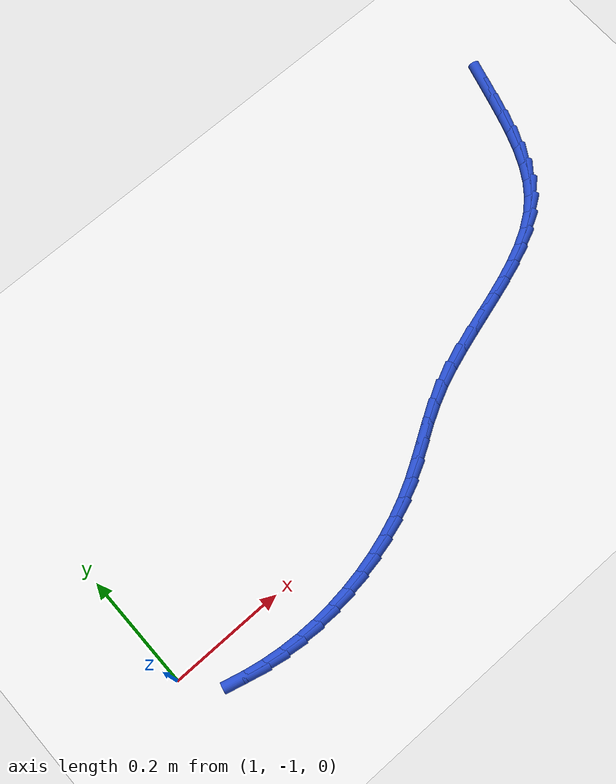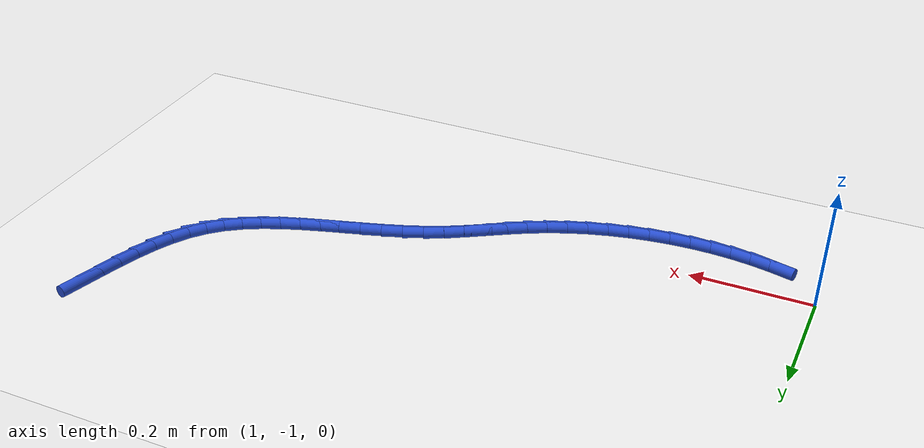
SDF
<sdf version="1.6">
 <world name="default">
  <model name="ground_plane">
   <static>1</static>
   <link name="link">
    <collision name="collision">
     <geometry><plane><normal>0 0 1</normal><size>100 100</size></plane></geometry>
     <surface><friction><ode><mu>100</mu><mu2>50</mu2></ode></friction></surface>
    </collision>
    <visual name="visual">
     <cast_shadows>0</cast_shadows>
     <geometry><plane><normal>0 0 1</normal><size>100 100</size></plane></geometry>
     <material>
      <script><uri>file://media/materials/scripts/gazebo.material</uri><name>Gazebo/WhiteGlow</name></script>
     </material>
    </visual>
   </link>
  </model>
  <model name="line">
   <link name="link_123">
    <pose>2.055883798735134 -0.5678172213441313 0.01 0 1.57 1.2972048636019677</pose>
    <collision name="collision">
     <geometry><cylinder><radius>0.01</radius><length>0.08</length></cylinder></geometry>
    </collision>
    <visual name="visual">
     <material>
      <script><name>Gazebo/Blue</name><uri>file://media/materials/scripts/gazebo.material</uri></script>
     </material>
     <geometry><cylinder><radius>0.01</radius><length>0.08</length></cylinder></geometry>
    </visual>
   </link>
   <link name="link_124">
    <pose>2.0462758349655066 -0.6020545209020888 0.01 0 1.57 1.2853734830545551</pose>
    <collision name="collision">
     <geometry><cylinder><radius>0.01</radius><length>0.08</length></cylinder></geometry>
    </collision>
    <visual name="visual">
     <material>
      <script><name>Gazebo/Blue</name><uri>file://media/materials/scripts/gazebo.material</uri></script>
     </material>
     <geometry><cylinder><radius>0.01</radius><length>0.08</length></cylinder></geometry>
    </visual>
   </link>
   <link name="link_125">
    <pose>2.036390455586121 -0.6357430249183852 0.01 0 1.57 1.254416554989902</pose>
    <collision name="collision">
     <geometry><cylinder><radius>0.01</radius><length>0.08</length></cylinder></geometry>
    </collision>
    <visual name="visual">
     <material>
      <script><name>Gazebo/Blue</name><uri>file://media/materials/scripts/gazebo.material</uri></script>
     </material>
     <geometry><cylinder><radius>0.01</radius><length>0.08</length></cylinder></geometry>
    </visual>
   </link>
   <link name="link_126">
    <pose>2.0256969860723544 -0.6684071673956302 0.01 0 1.57 1.2023373556497083</pose>
    <collision name="collision">
     <geometry><cylinder><radius>0.01</radius><length>0.08</length></cylinder></geometry>
    </collision>
    <visual name="visual">
     <material>
      <script><name>Gazebo/Blue</name><uri>file://media/materials/scripts/gazebo.material</uri></script>
     </material>
     <geometry><cylinder><radius>0.01</radius><length>0.08</length></cylinder></geometry>
    </visual>
   </link>
   <link name="link_127">
    <pose>2.0136647518995807 -0.699571382336436 0.01 0 1.57 1.126313383254475</pose>
    <collision name="collision">
     <geometry><cylinder><radius>0.01</radius><length>0.08</length></cylinder></geometry>
    </collision>
    <visual name="visual">
     <material>
      <script><name>Gazebo/Blue</name><uri>file://media/materials/scripts/gazebo.material</uri></script>
     </material>
     <geometry><cylinder><radius>0.01</radius><length>0.08</length></cylinder></geometry>
    </visual>
   </link>
   <link name="link_128">
    <pose>1.9997630785431766 -0.7287601037434134 0.01 0 1.57 1.0232794943333388</pose>
    <collision name="collision">
     <geometry><cylinder><radius>0.01</radius><length>0.08</length></cylinder></geometry>
    </collision>
    <visual name="visual">
     <material>
      <script><name>Gazebo/Blue</name><uri>file://media/materials/scripts/gazebo.material</uri></script>
     </material>
     <geometry><cylinder><radius>0.01</radius><length>0.08</length></cylinder></geometry>
    </visual>
   </link>
   <link name="link_129">
    <pose>1.9834612914785181 -0.755497765619174 0.01 0 1.57 0.8913676922408381</pose>
    <collision name="collision">
     <geometry><cylinder><radius>0.01</radius><length>0.08</length></cylinder></geometry>
    </collision>
    <visual name="visual">
     <material>
      <script><name>Gazebo/Blue</name><uri>file://media/materials/scripts/gazebo.material</uri></script>
     </material>
     <geometry><cylinder><radius>0.01</radius><length>0.08</length></cylinder></geometry>
    </visual>
   </link>
   <link name="link_130">
    <pose>1.9642287167121648 -0.7793088024828995 0.01 0 1.57 0.7402058791647951</pose>
    <collision name="collision">
     <geometry><cylinder><radius>0.01</radius><length>0.08</length></cylinder></geometry>
    </collision>
    <visual name="visual">
     <material>
      <script><name>Gazebo/Blue</name><uri>file://media/materials/scripts/gazebo.material</uri></script>
     </material>
     <geometry><cylinder><radius>0.01</radius><length>0.08</length></cylinder></geometry>
    </visual>
   </link>
   <link name="link_131">
    <pose>1.9417051030083394 -0.7998833832856939 0.01 0 1.57 0.6053521558457817</pose>
    <collision name="collision">
     <geometry><cylinder><radius>0.01</radius><length>0.08</length></cylinder></geometry>
    </collision>
    <visual name="visual">
     <material>
      <script><name>Gazebo/Blue</name><uri>file://media/materials/scripts/gazebo.material</uri></script>
     </material>
     <geometry><cylinder><radius>0.01</radius><length>0.08</length></cylinder></geometry>
    </visual>
   </link>
   <link name="link_132">
    <pose>1.916182246102033 -0.8175457861537957 0.01 0 1.57 0.4969506986200127</pose>
    <collision name="collision">
     <geometry><cylinder><radius>0.01</radius><length>0.08</length></cylinder></geometry>
    </collision>
    <visual name="visual">
     <material>
      <script><name>Gazebo/Blue</name><uri>file://media/materials/scripts/gazebo.material</uri></script>
     </material>
     <geometry><cylinder><radius>0.01</radius><length>0.08</length></cylinder></geometry>
    </visual>
   </link>
   <link name="link_133">
    <pose>1.888107862031428 -0.8327719201530457 0.01 0 1.57 0.41415614177470517</pose>
    <collision name="collision">
     <geometry><cylinder><radius>0.01</radius><length>0.08</length></cylinder></geometry>
    </collision>
    <visual name="visual">
     <material>
      <script><name>Gazebo/Blue</name><uri>file://media/materials/scripts/gazebo.material</uri></script>
     </material>
     <geometry><cylinder><radius>0.01</radius><length>0.08</length></cylinder></geometry>
    </visual>
   </link>
   <link name="link_134">
    <pose>1.8579296668347054 -0.846037694349286 0.01 0 1.57 0.3544527516067885</pose>
    <collision name="collision">
     <geometry><cylinder><radius>0.01</radius><length>0.08</length></cylinder></geometry>
    </collision>
    <visual name="visual">
     <material>
      <script><name>Gazebo/Blue</name><uri>file://media/materials/scripts/gazebo.material</uri></script>
     </material>
     <geometry><cylinder><radius>0.01</radius><length>0.08</length></cylinder></geometry>
    </visual>
   </link>
   <link name="link_135">
    <pose>1.8260953765500465 -0.8578190178083581 0.01 0 1.57 0.3151599422159717</pose>
    <collision name="collision">
     <geometry><cylinder><radius>0.01</radius><length>0.08</length></cylinder></geometry>
    </collision>
    <visual name="visual">
     <material>
      <script><name>Gazebo/Blue</name><uri>file://media/materials/scripts/gazebo.material</uri></script>
     </material>
     <geometry><cylinder><radius>0.01</radius><length>0.08</length></cylinder></geometry>
    </visual>
   </link>
   <link name="link_136">
    <pose>1.7930527072156326 -0.8685917995961033 0.01 0 1.57 0.2941455599177631</pose>
    <collision name="collision">
     <geometry><cylinder><radius>0.01</radius><length>0.08</length></cylinder></geometry>
    </collision>
    <visual name="visual">
     <material>
      <script><name>Gazebo/Blue</name><uri>file://media/materials/scripts/gazebo.material</uri></script>
     </material>
     <geometry><cylinder><radius>0.01</radius><length>0.08</length></cylinder></geometry>
    </visual>
   </link>
   <link name="link_137">
    <pose>1.7592493748696452 -0.8788319487783635 0.01 0 1.57 0.29007244390047227</pose>
    <collision name="collision">
     <geometry><cylinder><radius>0.01</radius><length>0.08</length></cylinder></geometry>
    </collision>
    <visual name="visual">
     <material>
      <script><name>Gazebo/Blue</name><uri>file://media/materials/scripts/gazebo.material</uri></script>
     </material>
     <geometry><cylinder><radius>0.01</radius><length>0.08</length></cylinder></geometry>
    </visual>
   </link>
   <link name="link_138">
    <pose>1.7251330955502657 -0.8890153744209806 0.01 0 1.57 0.30243947724921616</pose>
    <collision name="collision">
     <geometry><cylinder><radius>0.01</radius><length>0.08</length></cylinder></geometry>
    </collision>
    <visual name="visual">
     <material>
      <script><name>Gazebo/Blue</name><uri>file://media/materials/scripts/gazebo.material</uri></script>
     </material>
     <geometry><cylinder><radius>0.01</radius><length>0.08</length></cylinder></geometry>
    </visual>
   </link>
   <link name="link_139">
    <pose>1.6911515852956767 -0.8996179855897952 0.01 0 1.57 0.33154561490507417</pose>
    <collision name="collision">
     <geometry><cylinder><radius>0.01</radius><length>0.08</length></cylinder></geometry>
    </collision>
    <visual name="visual">
     <material>
      <script><name>Gazebo/Blue</name><uri>file://media/materials/scripts/gazebo.material</uri></script>
     </material>
     <geometry><cylinder><radius>0.01</radius><length>0.08</length></cylinder></geometry>
    </visual>
   </link>
   <link name="link_140">
    <pose>1.6577525601440584 -0.9111156913506496 0.01 0 1.57 0.37840542224372664</pose>
    <collision name="collision">
     <geometry><cylinder><radius>0.01</radius><length>0.08</length></cylinder></geometry>
    </collision>
    <visual name="visual">
     <material>
      <script><name>Gazebo/Blue</name><uri>file://media/materials/scripts/gazebo.material</uri></script>
     </material>
     <geometry><cylinder><radius>0.01</radius><length>0.08</length></cylinder></geometry>
    </visual>
   </link>
   <link name="link_141">
    <pose>1.6253837361335932 -0.9239844007693852 0.01 0 1.57 0.44420863464542515</pose>
    <collision name="collision">
     <geometry><cylinder><radius>0.01</radius><length>0.08</length></cylinder></geometry>
    </collision>
    <visual name="visual">
     <material>
      <script><name>Gazebo/Blue</name><uri>file://media/materials/scripts/gazebo.material</uri></script>
     </material>
     <geometry><cylinder><radius>0.01</radius><length>0.08</length></cylinder></geometry>
    </visual>
   </link>
   <link name="link_142">
    <pose>1.5944846695934485 -0.9386902607856266 0.01 0 1.57 0.5111256659114203</pose>
    <collision name="collision">
     <geometry><cylinder><radius>0.01</radius><length>0.08</length></cylinder></geometry>
    </collision>
    <visual name="visual">
     <material>
      <script><name>Gazebo/Blue</name><uri>file://media/materials/scripts/gazebo.material</uri></script>
     </material>
     <geometry><cylinder><radius>0.01</radius><length>0.08</length></cylinder></geometry>
    </visual>
   </link>
   <link name="link_143">
    <pose>1.5650677551744085 -0.955188369941015 0.01 0 1.57 0.5497157847877857</pose>
    <collision name="collision">
     <geometry><cylinder><radius>0.01</radius><length>0.08</length></cylinder></geometry>
    </collision>
    <visual name="visual">
     <material>
      <script><name>Gazebo/Blue</name><uri>file://media/materials/scripts/gazebo.material</uri></script>
     </material>
     <geometry><cylinder><radius>0.01</radius><length>0.08</length></cylinder></geometry>
    </visual>
   </link>
   <link name="link_144">
    <pose>1.5365168830670852 -0.9726818955676513 0.01 0 1.57 0.5563735688411622</pose>
    <collision name="collision">
     <geometry><cylinder><radius>0.01</radius><length>0.08</length></cylinder></geometry>
    </collision>
    <visual name="visual">
     <material>
      <script><name>Gazebo/Blue</name><uri>file://media/materials/scripts/gazebo.material</uri></script>
     </material>
     <geometry><cylinder><radius>0.01</radius><length>0.08</length></cylinder></geometry>
    </visual>
   </link>
   <link name="link_145">
    <pose>1.5081656230715421 -0.9903138026052491 0.01 0 1.57 0.5307294794369654</pose>
    <collision name="collision">
     <geometry><cylinder><radius>0.01</radius><length>0.08</length></cylinder></geometry>
    </collision>
    <visual name="visual">
     <material>
      <script><name>Gazebo/Blue</name><uri>file://media/materials/scripts/gazebo.material</uri></script>
     </material>
     <geometry><cylinder><radius>0.01</radius><length>0.08</length></cylinder></geometry>
    </visual>
   </link>
   <link name="link_146">
    <pose>1.4793475449878475 -1.0072270559935228 0.01 0 1.57 0.4756763354643991</pose>
    <collision name="collision">
     <geometry><cylinder><radius>0.01</radius><length>0.08</length></cylinder></geometry>
    </collision>
    <visual name="visual">
     <material>
      <script><name>Gazebo/Blue</name><uri>file://media/materials/scripts/gazebo.material</uri></script>
     </material>
     <geometry><cylinder><radius>0.01</radius><length>0.08</length></cylinder></geometry>
    </visual>
   </link>
   <link name="link_147">
    <pose>1.4494575234629006 -1.0226242316643017 0.01 0 1.57 0.4125976022037139</pose>
    <collision name="collision">
     <geometry><cylinder><radius>0.01</radius><length>0.08</length></cylinder></geometry>
    </collision>
    <visual name="visual">
     <material>
      <script><name>Gazebo/Blue</name><uri>file://media/materials/scripts/gazebo.material</uri></script>
     </material>
     <geometry><cylinder><radius>0.01</radius><length>0.08</length></cylinder></geometry>
    </visual>
   </link>
   <link name="link_148">
    <pose>1.4184109432702965 -1.036214033966012 0.01 0 1.57 0.35155149296371263</pose>
    <collision name="collision">
     <geometry><cylinder><radius>0.01</radius><length>0.08</length></cylinder></geometry>
    </collision>
    <visual name="visual">
     <material>
      <script><name>Gazebo/Blue</name><uri>file://media/materials/scripts/gazebo.material</uri></script>
     </material>
     <geometry><cylinder><radius>0.01</radius><length>0.08</length></cylinder></geometry>
    </visual>
   </link>
   <link name="link_149">
    <pose>1.3863857559305541 -1.04796047926707 0.01 0 1.57 0.29206914647365284</pose>
    <collision name="collision">
     <geometry><cylinder><radius>0.01</radius><length>0.08</length></cylinder></geometry>
    </collision>
    <visual name="visual">
     <material>
      <script><name>Gazebo/Blue</name><uri>file://media/materials/scripts/gazebo.material</uri></script>
     </material>
     <geometry><cylinder><radius>0.01</radius><length>0.08</length></cylinder></geometry>
    </visual>
   </link>
   <link name="link_150">
    <pose>1.3535619257149927 -1.0578295410743275 0.01 0 1.57 0.23360592377589354</pose>
    <collision name="collision">
     <geometry><cylinder><radius>0.01</radius><length>0.08</length></cylinder></geometry>
    </collision>
    <visual name="visual">
     <material>
      <script><name>Gazebo/Blue</name><uri>file://media/materials/scripts/gazebo.material</uri></script>
     </material>
     <geometry><cylinder><radius>0.01</radius><length>0.08</length></cylinder></geometry>
    </visual>
   </link>
   <link name="link_151">
    <pose>1.3201194168949297 -1.065787192894636 0.01 0 1.57 0.17562165119054848</pose>
    <collision name="collision">
     <geometry><cylinder><radius>0.01</radius><length>0.08</length></cylinder></geometry>
    </collision>
    <visual name="visual">
     <material>
      <script><name>Gazebo/Blue</name><uri>file://media/materials/scripts/gazebo.material</uri></script>
     </material>
     <geometry><cylinder><radius>0.01</radius><length>0.08</length></cylinder></geometry>
    </visual>
   </link>
   <link name="link_152">
    <pose>1.2862381937416847 -1.0717994082348472 0.01 0 1.57 0.11757921124518578</pose>
    <collision name="collision">
     <geometry><cylinder><radius>0.01</radius><length>0.08</length></cylinder></geometry>
    </collision>
    <visual name="visual">
     <material>
      <script><name>Gazebo/Blue</name><uri>file://media/materials/scripts/gazebo.material</uri></script>
     </material>
     <geometry><cylinder><radius>0.01</radius><length>0.08</length></cylinder></geometry>
    </visual>
   </link>
   <link name="link_153">
    <pose>1.2520982205265758 -1.0758321606018122 0.01 0 1.57 0.058942053990512874</pose>
    <collision name="collision">
     <geometry><cylinder><radius>0.01</radius><length>0.08</length></cylinder></geometry>
    </collision>
    <visual name="visual">
     <material>
      <script><name>Gazebo/Blue</name><uri>file://media/materials/scripts/gazebo.material</uri></script>
     </material>
     <geometry><cylinder><radius>0.01</radius><length>0.08</length></cylinder></geometry>
    </visual>
   </link>
   <link name="link_154">
    <pose>1.2178794615209214 -1.0778514235023833 0.01 0 1.57 -0.0008281083265205261</pose>
    <collision name="collision">
     <geometry><cylinder><radius>0.01</radius><length>0.08</length></cylinder></geometry>
    </collision>
    <visual name="visual">
     <material>
      <script><name>Gazebo/Blue</name><uri>file://media/materials/scripts/gazebo.material</uri></script>
     </material>
     <geometry><cylinder><radius>0.01</radius><length>0.08</length></cylinder></geometry>
    </visual>
   </link>
   <link name="link_155">
    <pose>1.183761880996039 -1.0778231704434116 0.01 0 1.57 -0.062272148281883856</pose>
    <collision name="collision">
     <geometry><cylinder><radius>0.01</radius><length>0.08</length></cylinder></geometry>
    </collision>
    <visual name="visual">
     <material>
      <script><name>Gazebo/Blue</name><uri>file://media/materials/scripts/gazebo.material</uri></script>
     </material>
     <geometry><cylinder><radius>0.01</radius><length>0.08</length></cylinder></geometry>
    </visual>
   </link>
   <link name="link_156">
    <pose>1.1499254432232482 -1.075713374931749 0.01 0 1.57 -0.12593147094275978</pose>
    <collision name="collision">
     <geometry><cylinder><radius>0.01</radius><length>0.08</length></cylinder></geometry>
    </collision>
    <visual name="visual">
     <material>
      <script><name>Gazebo/Blue</name><uri>file://media/materials/scripts/gazebo.material</uri></script>
     </material>
     <geometry><cylinder><radius>0.01</radius><length>0.08</length></cylinder></geometry>
    </visual>
   </link>
   <link name="link_157">
    <pose>1.116550112473866 -1.0714880104742468 0.01 0 1.57 -0.1900726468275392</pose>
    <collision name="collision">
     <geometry><cylinder><radius>0.01</radius><length>0.08</length></cylinder></geometry>
    </collision>
    <visual name="visual">
     <material>
      <script><name>Gazebo/Blue</name><uri>file://media/materials/scripts/gazebo.material</uri></script>
     </material>
     <geometry><cylinder><radius>0.01</radius><length>0.08</length></cylinder></geometry>
    </visual>
   </link>
   <link name="link_158">
    <pose>1.0837660732061103 -1.0651805195867674 0.01 0 1.57 -0.24533986953350165</pose>
    <collision name="collision">
     <geometry><cylinder><radius>0.01</radius><length>0.08</length></cylinder></geometry>
    </collision>
    <visual name="visual">
     <material>
      <script><name>Gazebo/Blue</name><uri>file://media/materials/scripts/gazebo.material</uri></script>
     </material>
     <geometry><cylinder><radius>0.01</radius><length>0.08</length></cylinder></geometry>
    </visual>
   </link>
  </model>
 </world>
</sdf>
